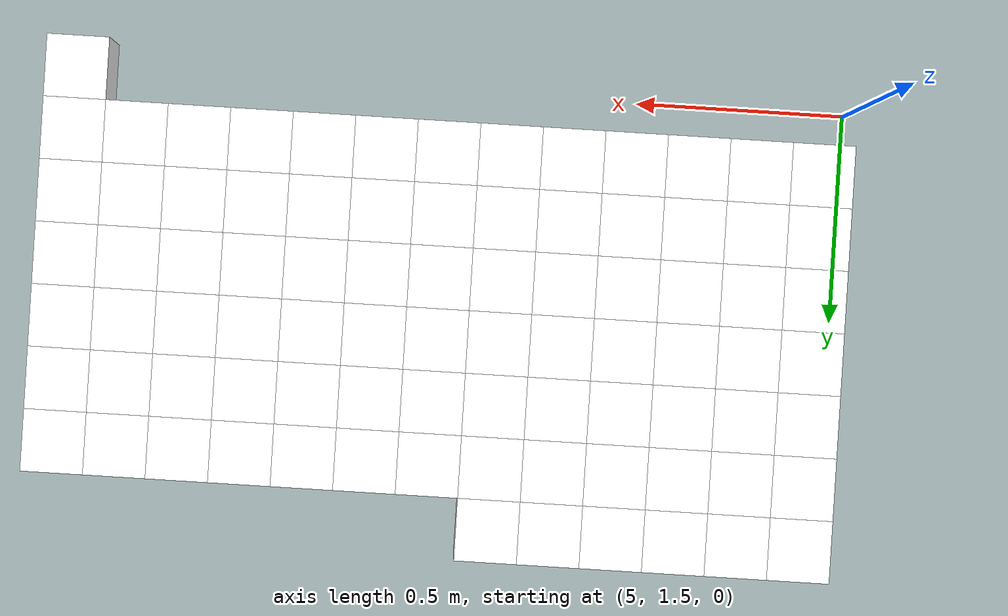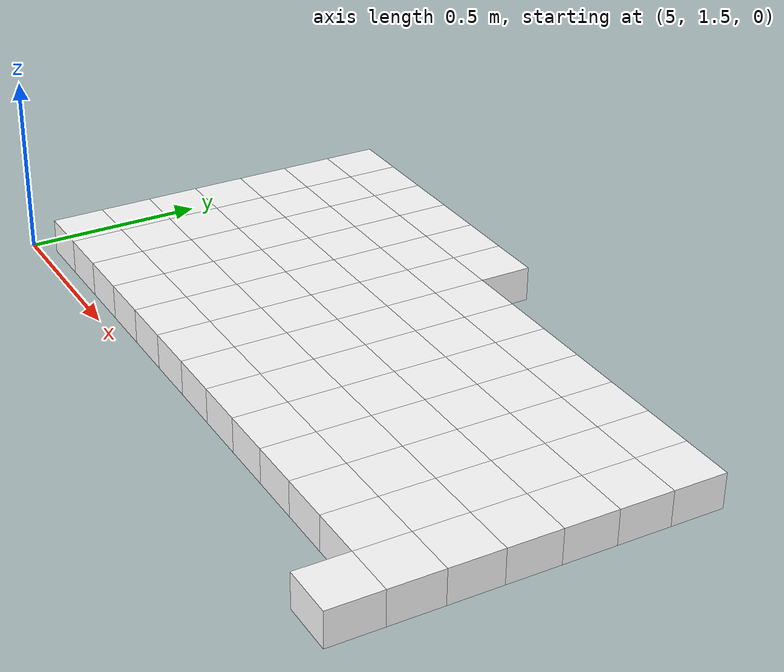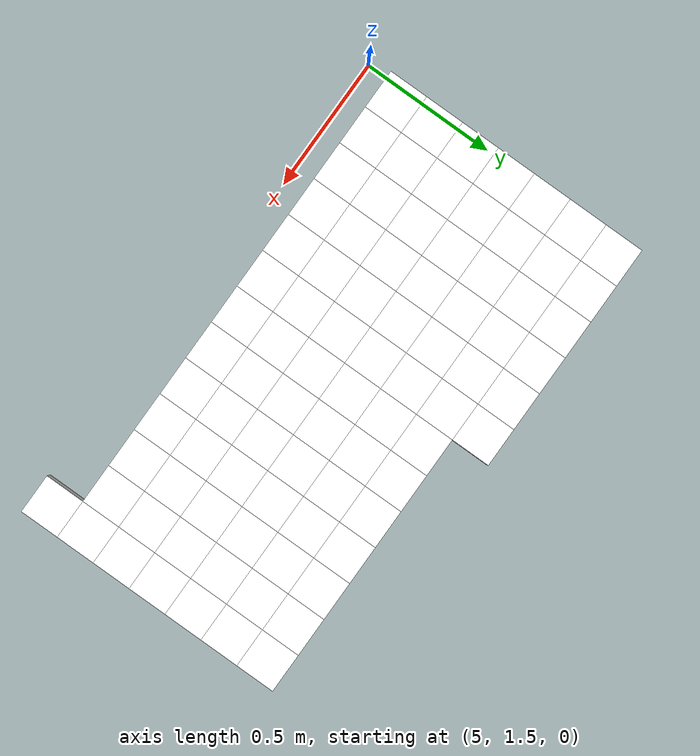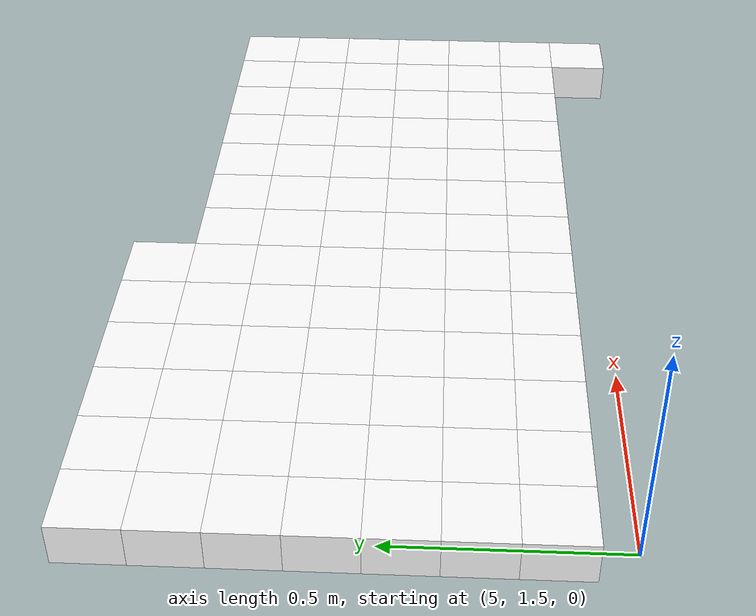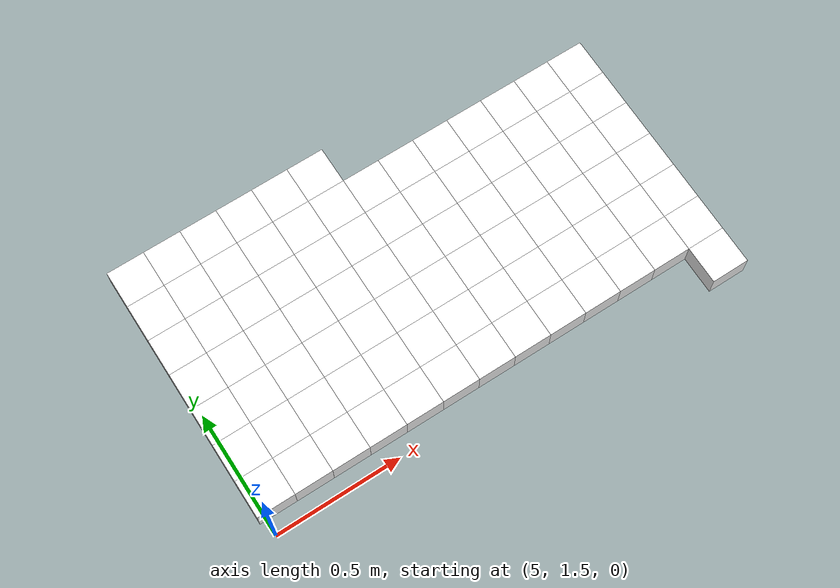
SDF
<sdf version="1.7">
 <world name="default">
  <include><uri>model://sun</uri></include>
  <model name="static_environment">
   <static>true</static>
   <link name="region_599">
    <pose>6.850000000000007 1.5 0.0 0.0 0.0 0.0</pose>
    <collision name="region_599_collision">
     <geometry><box><size>0.15 0.15 0.1</size></box></geometry>
     <surface><friction><ode><mu>1.0</mu><mu2>1.0</mu2></ode></friction></surface>
    </collision>
    <visual name="region_599_visual">
     <geometry><box><size>0.15 0.15 0.1</size></box></geometry>
     <material><ambient>1.0 1.0 1.0 1.0</ambient><diffuse>1.0 1.0 1.0 1.0</diffuse></material>
    </visual>
   </link>
   <link name="region_607">
    <pose>5.0500000000000025 1.65 0.0 0.0 0.0 0.0</pose>
    <collision name="region_607_collision">
     <geometry><box><size>0.15 0.15 0.1</size></box></geometry>
     <surface><friction><ode><mu>1.0</mu><mu2>1.0</mu2></ode></friction></surface>
    </collision>
    <visual name="region_607_visual">
     <geometry><box><size>0.15 0.15 0.1</size></box></geometry>
     <material><ambient>1.0 1.0 1.0 1.0</ambient><diffuse>1.0 1.0 1.0 1.0</diffuse></material>
    </visual>
   </link>
   <link name="region_608">
    <pose>5.200000000000003 1.65 0.0 0.0 0.0 0.0</pose>
    <collision name="region_608_collision">
     <geometry><box><size>0.15 0.15 0.1</size></box></geometry>
     <surface><friction><ode><mu>1.0</mu><mu2>1.0</mu2></ode></friction></surface>
    </collision>
    <visual name="region_608_visual">
     <geometry><box><size>0.15 0.15 0.1</size></box></geometry>
     <material><ambient>1.0 1.0 1.0 1.0</ambient><diffuse>1.0 1.0 1.0 1.0</diffuse></material>
    </visual>
   </link>
   <link name="region_609">
    <pose>5.350000000000003 1.65 0.0 0.0 0.0 0.0</pose>
    <collision name="region_609_collision">
     <geometry><box><size>0.15 0.15 0.1</size></box></geometry>
     <surface><friction><ode><mu>1.0</mu><mu2>1.0</mu2></ode></friction></surface>
    </collision>
    <visual name="region_609_visual">
     <geometry><box><size>0.15 0.15 0.1</size></box></geometry>
     <material><ambient>1.0 1.0 1.0 1.0</ambient><diffuse>1.0 1.0 1.0 1.0</diffuse></material>
    </visual>
   </link>
   <link name="region_610">
    <pose>5.5000000000000036 1.65 0.0 0.0 0.0 0.0</pose>
    <collision name="region_610_collision">
     <geometry><box><size>0.15 0.15 0.1</size></box></geometry>
     <surface><friction><ode><mu>1.0</mu><mu2>1.0</mu2></ode></friction></surface>
    </collision>
    <visual name="region_610_visual">
     <geometry><box><size>0.15 0.15 0.1</size></box></geometry>
     <material><ambient>1.0 1.0 1.0 1.0</ambient><diffuse>1.0 1.0 1.0 1.0</diffuse></material>
    </visual>
   </link>
   <link name="region_611">
    <pose>5.650000000000004 1.65 0.0 0.0 0.0 0.0</pose>
    <collision name="region_611_collision">
     <geometry><box><size>0.15 0.15 0.1</size></box></geometry>
     <surface><friction><ode><mu>1.0</mu><mu2>1.0</mu2></ode></friction></surface>
    </collision>
    <visual name="region_611_visual">
     <geometry><box><size>0.15 0.15 0.1</size></box></geometry>
     <material><ambient>1.0 1.0 1.0 1.0</ambient><diffuse>1.0 1.0 1.0 1.0</diffuse></material>
    </visual>
   </link>
   <link name="region_612">
    <pose>5.800000000000004 1.65 0.0 0.0 0.0 0.0</pose>
    <collision name="region_612_collision">
     <geometry><box><size>0.15 0.15 0.1</size></box></geometry>
     <surface><friction><ode><mu>1.0</mu><mu2>1.0</mu2></ode></friction></surface>
    </collision>
    <visual name="region_612_visual">
     <geometry><box><size>0.15 0.15 0.1</size></box></geometry>
     <material><ambient>1.0 1.0 1.0 1.0</ambient><diffuse>1.0 1.0 1.0 1.0</diffuse></material>
    </visual>
   </link>
   <link name="region_613">
    <pose>5.950000000000005 1.65 0.0 0.0 0.0 0.0</pose>
    <collision name="region_613_collision">
     <geometry><box><size>0.15 0.15 0.1</size></box></geometry>
     <surface><friction><ode><mu>1.0</mu><mu2>1.0</mu2></ode></friction></surface>
    </collision>
    <visual name="region_613_visual">
     <geometry><box><size>0.15 0.15 0.1</size></box></geometry>
     <material><ambient>1.0 1.0 1.0 1.0</ambient><diffuse>1.0 1.0 1.0 1.0</diffuse></material>
    </visual>
   </link>
   <link name="region_614">
    <pose>6.100000000000005 1.65 0.0 0.0 0.0 0.0</pose>
    <collision name="region_614_collision">
     <geometry><box><size>0.15 0.15 0.1</size></box></geometry>
     <surface><friction><ode><mu>1.0</mu><mu2>1.0</mu2></ode></friction></surface>
    </collision>
    <visual name="region_614_visual">
     <geometry><box><size>0.15 0.15 0.1</size></box></geometry>
     <material><ambient>1.0 1.0 1.0 1.0</ambient><diffuse>1.0 1.0 1.0 1.0</diffuse></material>
    </visual>
   </link>
   <link name="region_615">
    <pose>6.250000000000005 1.65 0.0 0.0 0.0 0.0</pose>
    <collision name="region_615_collision">
     <geometry><box><size>0.15 0.15 0.1</size></box></geometry>
     <surface><friction><ode><mu>1.0</mu><mu2>1.0</mu2></ode></friction></surface>
    </collision>
    <visual name="region_615_visual">
     <geometry><box><size>0.15 0.15 0.1</size></box></geometry>
     <material><ambient>1.0 1.0 1.0 1.0</ambient><diffuse>1.0 1.0 1.0 1.0</diffuse></material>
    </visual>
   </link>
   <link name="region_616">
    <pose>6.400000000000006 1.65 0.0 0.0 0.0 0.0</pose>
    <collision name="region_616_collision">
     <geometry><box><size>0.15 0.15 0.1</size></box></geometry>
     <surface><friction><ode><mu>1.0</mu><mu2>1.0</mu2></ode></friction></surface>
    </collision>
    <visual name="region_616_visual">
     <geometry><box><size>0.15 0.15 0.1</size></box></geometry>
     <material><ambient>1.0 1.0 1.0 1.0</ambient><diffuse>1.0 1.0 1.0 1.0</diffuse></material>
    </visual>
   </link>
   <link name="region_617">
    <pose>6.550000000000006 1.65 0.0 0.0 0.0 0.0</pose>
    <collision name="region_617_collision">
     <geometry><box><size>0.15 0.15 0.1</size></box></geometry>
     <surface><friction><ode><mu>1.0</mu><mu2>1.0</mu2></ode></friction></surface>
    </collision>
    <visual name="region_617_visual">
     <geometry><box><size>0.15 0.15 0.1</size></box></geometry>
     <material><ambient>1.0 1.0 1.0 1.0</ambient><diffuse>1.0 1.0 1.0 1.0</diffuse></material>
    </visual>
   </link>
   <link name="region_618">
    <pose>6.700000000000006 1.65 0.0 0.0 0.0 0.0</pose>
    <collision name="region_618_collision">
     <geometry><box><size>0.15 0.15 0.1</size></box></geometry>
     <surface><friction><ode><mu>1.0</mu><mu2>1.0</mu2></ode></friction></surface>
    </collision>
    <visual name="region_618_visual">
     <geometry><box><size>0.15 0.15 0.1</size></box></geometry>
     <material><ambient>1.0 1.0 1.0 1.0</ambient><diffuse>1.0 1.0 1.0 1.0</diffuse></material>
    </visual>
   </link>
   <link name="region_619">
    <pose>6.850000000000007 1.65 0.0 0.0 0.0 0.0</pose>
    <collision name="region_619_collision">
     <geometry><box><size>0.15 0.15 0.1</size></box></geometry>
     <surface><friction><ode><mu>1.0</mu><mu2>1.0</mu2></ode></friction></surface>
    </collision>
    <visual name="region_619_visual">
     <geometry><box><size>0.15 0.15 0.1</size></box></geometry>
     <material><ambient>1.0 1.0 1.0 1.0</ambient><diffuse>1.0 1.0 1.0 1.0</diffuse></material>
    </visual>
   </link>
   <link name="region_627">
    <pose>5.0500000000000025 1.7999999999999998 0.0 0.0 0.0 0.0</pose>
    <collision name="region_627_collision">
     <geometry><box><size>0.15 0.15 0.1</size></box></geometry>
     <surface><friction><ode><mu>1.0</mu><mu2>1.0</mu2></ode></friction></surface>
    </collision>
    <visual name="region_627_visual">
     <geometry><box><size>0.15 0.15 0.1</size></box></geometry>
     <material><ambient>1.0 1.0 1.0 1.0</ambient><diffuse>1.0 1.0 1.0 1.0</diffuse></material>
    </visual>
   </link>
   <link name="region_628">
    <pose>5.200000000000003 1.7999999999999998 0.0 0.0 0.0 0.0</pose>
    <collision name="region_628_collision">
     <geometry><box><size>0.15 0.15 0.1</size></box></geometry>
     <surface><friction><ode><mu>1.0</mu><mu2>1.0</mu2></ode></friction></surface>
    </collision>
    <visual name="region_628_visual">
     <geometry><box><size>0.15 0.15 0.1</size></box></geometry>
     <material><ambient>1.0 1.0 1.0 1.0</ambient><diffuse>1.0 1.0 1.0 1.0</diffuse></material>
    </visual>
   </link>
   <link name="region_629">
    <pose>5.350000000000003 1.7999999999999998 0.0 0.0 0.0 0.0</pose>
    <collision name="region_629_collision">
     <geometry><box><size>0.15 0.15 0.1</size></box></geometry>
     <surface><friction><ode><mu>1.0</mu><mu2>1.0</mu2></ode></friction></surface>
    </collision>
    <visual name="region_629_visual">
     <geometry><box><size>0.15 0.15 0.1</size></box></geometry>
     <material><ambient>1.0 1.0 1.0 1.0</ambient><diffuse>1.0 1.0 1.0 1.0</diffuse></material>
    </visual>
   </link>
   <link name="region_630">
    <pose>5.5000000000000036 1.7999999999999998 0.0 0.0 0.0 0.0</pose>
    <collision name="region_630_collision">
     <geometry><box><size>0.15 0.15 0.1</size></box></geometry>
     <surface><friction><ode><mu>1.0</mu><mu2>1.0</mu2></ode></friction></surface>
    </collision>
    <visual name="region_630_visual">
     <geometry><box><size>0.15 0.15 0.1</size></box></geometry>
     <material><ambient>1.0 1.0 1.0 1.0</ambient><diffuse>1.0 1.0 1.0 1.0</diffuse></material>
    </visual>
   </link>
   <link name="region_631">
    <pose>5.650000000000004 1.7999999999999998 0.0 0.0 0.0 0.0</pose>
    <collision name="region_631_collision">
     <geometry><box><size>0.15 0.15 0.1</size></box></geometry>
     <surface><friction><ode><mu>1.0</mu><mu2>1.0</mu2></ode></friction></surface>
    </collision>
    <visual name="region_631_visual">
     <geometry><box><size>0.15 0.15 0.1</size></box></geometry>
     <material><ambient>1.0 1.0 1.0 1.0</ambient><diffuse>1.0 1.0 1.0 1.0</diffuse></material>
    </visual>
   </link>
   <link name="region_632">
    <pose>5.800000000000004 1.7999999999999998 0.0 0.0 0.0 0.0</pose>
    <collision name="region_632_collision">
     <geometry><box><size>0.15 0.15 0.1</size></box></geometry>
     <surface><friction><ode><mu>1.0</mu><mu2>1.0</mu2></ode></friction></surface>
    </collision>
    <visual name="region_632_visual">
     <geometry><box><size>0.15 0.15 0.1</size></box></geometry>
     <material><ambient>1.0 1.0 1.0 1.0</ambient><diffuse>1.0 1.0 1.0 1.0</diffuse></material>
    </visual>
   </link>
   <link name="region_633">
    <pose>5.950000000000005 1.7999999999999998 0.0 0.0 0.0 0.0</pose>
    <collision name="region_633_collision">
     <geometry><box><size>0.15 0.15 0.1</size></box></geometry>
     <surface><friction><ode><mu>1.0</mu><mu2>1.0</mu2></ode></friction></surface>
    </collision>
    <visual name="region_633_visual">
     <geometry><box><size>0.15 0.15 0.1</size></box></geometry>
     <material><ambient>1.0 1.0 1.0 1.0</ambient><diffuse>1.0 1.0 1.0 1.0</diffuse></material>
    </visual>
   </link>
   <link name="region_634">
    <pose>6.100000000000005 1.7999999999999998 0.0 0.0 0.0 0.0</pose>
    <collision name="region_634_collision">
     <geometry><box><size>0.15 0.15 0.1</size></box></geometry>
     <surface><friction><ode><mu>1.0</mu><mu2>1.0</mu2></ode></friction></surface>
    </collision>
    <visual name="region_634_visual">
     <geometry><box><size>0.15 0.15 0.1</size></box></geometry>
     <material><ambient>1.0 1.0 1.0 1.0</ambient><diffuse>1.0 1.0 1.0 1.0</diffuse></material>
    </visual>
   </link>
   <link name="region_635">
    <pose>6.250000000000005 1.7999999999999998 0.0 0.0 0.0 0.0</pose>
    <collision name="region_635_collision">
     <geometry><box><size>0.15 0.15 0.1</size></box></geometry>
     <surface><friction><ode><mu>1.0</mu><mu2>1.0</mu2></ode></friction></surface>
    </collision>
    <visual name="region_635_visual">
     <geometry><box><size>0.15 0.15 0.1</size></box></geometry>
     <material><ambient>1.0 1.0 1.0 1.0</ambient><diffuse>1.0 1.0 1.0 1.0</diffuse></material>
    </visual>
   </link>
   <link name="region_636">
    <pose>6.400000000000006 1.7999999999999998 0.0 0.0 0.0 0.0</pose>
    <collision name="region_636_collision">
     <geometry><box><size>0.15 0.15 0.1</size></box></geometry>
     <surface><friction><ode><mu>1.0</mu><mu2>1.0</mu2></ode></friction></surface>
    </collision>
    <visual name="region_636_visual">
     <geometry><box><size>0.15 0.15 0.1</size></box></geometry>
     <material><ambient>1.0 1.0 1.0 1.0</ambient><diffuse>1.0 1.0 1.0 1.0</diffuse></material>
    </visual>
   </link>
   <link name="region_637">
    <pose>6.550000000000006 1.7999999999999998 0.0 0.0 0.0 0.0</pose>
    <collision name="region_637_collision">
     <geometry><box><size>0.15 0.15 0.1</size></box></geometry>
     <surface><friction><ode><mu>1.0</mu><mu2>1.0</mu2></ode></friction></surface>
    </collision>
    <visual name="region_637_visual">
     <geometry><box><size>0.15 0.15 0.1</size></box></geometry>
     <material><ambient>1.0 1.0 1.0 1.0</ambient><diffuse>1.0 1.0 1.0 1.0</diffuse></material>
    </visual>
   </link>
   <link name="region_638">
    <pose>6.700000000000006 1.7999999999999998 0.0 0.0 0.0 0.0</pose>
    <collision name="region_638_collision">
     <geometry><box><size>0.15 0.15 0.1</size></box></geometry>
     <surface><friction><ode><mu>1.0</mu><mu2>1.0</mu2></ode></friction></surface>
    </collision>
    <visual name="region_638_visual">
     <geometry><box><size>0.15 0.15 0.1</size></box></geometry>
     <material><ambient>1.0 1.0 1.0 1.0</ambient><diffuse>1.0 1.0 1.0 1.0</diffuse></material>
    </visual>
   </link>
   <link name="region_639">
    <pose>6.850000000000007 1.7999999999999998 0.0 0.0 0.0 0.0</pose>
    <collision name="region_639_collision">
     <geometry><box><size>0.15 0.15 0.1</size></box></geometry>
     <surface><friction><ode><mu>1.0</mu><mu2>1.0</mu2></ode></friction></surface>
    </collision>
    <visual name="region_639_visual">
     <geometry><box><size>0.15 0.15 0.1</size></box></geometry>
     <material><ambient>1.0 1.0 1.0 1.0</ambient><diffuse>1.0 1.0 1.0 1.0</diffuse></material>
    </visual>
   </link>
   <link name="region_647">
    <pose>5.0500000000000025 1.9499999999999997 0.0 0.0 0.0 0.0</pose>
    <collision name="region_647_collision">
     <geometry><box><size>0.15 0.15 0.1</size></box></geometry>
     <surface><friction><ode><mu>1.0</mu><mu2>1.0</mu2></ode></friction></surface>
    </collision>
    <visual name="region_647_visual">
     <geometry><box><size>0.15 0.15 0.1</size></box></geometry>
     <material><ambient>1.0 1.0 1.0 1.0</ambient><diffuse>1.0 1.0 1.0 1.0</diffuse></material>
    </visual>
   </link>
   <link name="region_648">
    <pose>5.200000000000003 1.9499999999999997 0.0 0.0 0.0 0.0</pose>
    <collision name="region_648_collision">
     <geometry><box><size>0.15 0.15 0.1</size></box></geometry>
     <surface><friction><ode><mu>1.0</mu><mu2>1.0</mu2></ode></friction></surface>
    </collision>
    <visual name="region_648_visual">
     <geometry><box><size>0.15 0.15 0.1</size></box></geometry>
     <material><ambient>1.0 1.0 1.0 1.0</ambient><diffuse>1.0 1.0 1.0 1.0</diffuse></material>
    </visual>
   </link>
   <link name="region_649">
    <pose>5.350000000000003 1.9499999999999997 0.0 0.0 0.0 0.0</pose>
    <collision name="region_649_collision">
     <geometry><box><size>0.15 0.15 0.1</size></box></geometry>
     <surface><friction><ode><mu>1.0</mu><mu2>1.0</mu2></ode></friction></surface>
    </collision>
    <visual name="region_649_visual">
     <geometry><box><size>0.15 0.15 0.1</size></box></geometry>
     <material><ambient>1.0 1.0 1.0 1.0</ambient><diffuse>1.0 1.0 1.0 1.0</diffuse></material>
    </visual>
   </link>
   <link name="region_650">
    <pose>5.5000000000000036 1.9499999999999997 0.0 0.0 0.0 0.0</pose>
    <collision name="region_650_collision">
     <geometry><box><size>0.15 0.15 0.1</size></box></geometry>
     <surface><friction><ode><mu>1.0</mu><mu2>1.0</mu2></ode></friction></surface>
    </collision>
    <visual name="region_650_visual">
     <geometry><box><size>0.15 0.15 0.1</size></box></geometry>
     <material><ambient>1.0 1.0 1.0 1.0</ambient><diffuse>1.0 1.0 1.0 1.0</diffuse></material>
    </visual>
   </link>
   <link name="region_651">
    <pose>5.650000000000004 1.9499999999999997 0.0 0.0 0.0 0.0</pose>
    <collision name="region_651_collision">
     <geometry><box><size>0.15 0.15 0.1</size></box></geometry>
     <surface><friction><ode><mu>1.0</mu><mu2>1.0</mu2></ode></friction></surface>
    </collision>
    <visual name="region_651_visual">
     <geometry><box><size>0.15 0.15 0.1</size></box></geometry>
     <material><ambient>1.0 1.0 1.0 1.0</ambient><diffuse>1.0 1.0 1.0 1.0</diffuse></material>
    </visual>
   </link>
   <link name="region_652">
    <pose>5.800000000000004 1.9499999999999997 0.0 0.0 0.0 0.0</pose>
    <collision name="region_652_collision">
     <geometry><box><size>0.15 0.15 0.1</size></box></geometry>
     <surface><friction><ode><mu>1.0</mu><mu2>1.0</mu2></ode></friction></surface>
    </collision>
    <visual name="region_652_visual">
     <geometry><box><size>0.15 0.15 0.1</size></box></geometry>
     <material><ambient>1.0 1.0 1.0 1.0</ambient><diffuse>1.0 1.0 1.0 1.0</diffuse></material>
    </visual>
   </link>
   <link name="region_653">
    <pose>5.950000000000005 1.9499999999999997 0.0 0.0 0.0 0.0</pose>
    <collision name="region_653_collision">
     <geometry><box><size>0.15 0.15 0.1</size></box></geometry>
     <surface><friction><ode><mu>1.0</mu><mu2>1.0</mu2></ode></friction></surface>
    </collision>
    <visual name="region_653_visual">
     <geometry><box><size>0.15 0.15 0.1</size></box></geometry>
     <material><ambient>1.0 1.0 1.0 1.0</ambient><diffuse>1.0 1.0 1.0 1.0</diffuse></material>
    </visual>
   </link>
   <link name="region_654">
    <pose>6.100000000000005 1.9499999999999997 0.0 0.0 0.0 0.0</pose>
    <collision name="region_654_collision">
     <geometry><box><size>0.15 0.15 0.1</size></box></geometry>
     <surface><friction><ode><mu>1.0</mu><mu2>1.0</mu2></ode></friction></surface>
    </collision>
    <visual name="region_654_visual">
     <geometry><box><size>0.15 0.15 0.1</size></box></geometry>
     <material><ambient>1.0 1.0 1.0 1.0</ambient><diffuse>1.0 1.0 1.0 1.0</diffuse></material>
    </visual>
   </link>
   <link name="region_655">
    <pose>6.250000000000005 1.9499999999999997 0.0 0.0 0.0 0.0</pose>
    <collision name="region_655_collision">
     <geometry><box><size>0.15 0.15 0.1</size></box></geometry>
     <surface><friction><ode><mu>1.0</mu><mu2>1.0</mu2></ode></friction></surface>
    </collision>
    <visual name="region_655_visual">
     <geometry><box><size>0.15 0.15 0.1</size></box></geometry>
     <material><ambient>1.0 1.0 1.0 1.0</ambient><diffuse>1.0 1.0 1.0 1.0</diffuse></material>
    </visual>
   </link>
   <link name="region_656">
    <pose>6.400000000000006 1.9499999999999997 0.0 0.0 0.0 0.0</pose>
    <collision name="region_656_collision">
     <geometry><box><size>0.15 0.15 0.1</size></box></geometry>
     <surface><friction><ode><mu>1.0</mu><mu2>1.0</mu2></ode></friction></surface>
    </collision>
    <visual name="region_656_visual">
     <geometry><box><size>0.15 0.15 0.1</size></box></geometry>
     <material><ambient>1.0 1.0 1.0 1.0</ambient><diffuse>1.0 1.0 1.0 1.0</diffuse></material>
    </visual>
   </link>
   <link name="region_657">
    <pose>6.550000000000006 1.9499999999999997 0.0 0.0 0.0 0.0</pose>
    <collision name="region_657_collision">
     <geometry><box><size>0.15 0.15 0.1</size></box></geometry>
     <surface><friction><ode><mu>1.0</mu><mu2>1.0</mu2></ode></friction></surface>
    </collision>
    <visual name="region_657_visual">
     <geometry><box><size>0.15 0.15 0.1</size></box></geometry>
     <material><ambient>1.0 1.0 1.0 1.0</ambient><diffuse>1.0 1.0 1.0 1.0</diffuse></material>
    </visual>
   </link>
   <link name="region_658">
    <pose>6.700000000000006 1.9499999999999997 0.0 0.0 0.0 0.0</pose>
    <collision name="region_658_collision">
     <geometry><box><size>0.15 0.15 0.1</size></box></geometry>
     <surface><friction><ode><mu>1.0</mu><mu2>1.0</mu2></ode></friction></surface>
    </collision>
    <visual name="region_658_visual">
     <geometry><box><size>0.15 0.15 0.1</size></box></geometry>
     <material><ambient>1.0 1.0 1.0 1.0</ambient><diffuse>1.0 1.0 1.0 1.0</diffuse></material>
    </visual>
   </link>
   <link name="region_659">
    <pose>6.850000000000007 1.9499999999999997 0.0 0.0 0.0 0.0</pose>
    <collision name="region_659_collision">
     <geometry><box><size>0.15 0.15 0.1</size></box></geometry>
     <surface><friction><ode><mu>1.0</mu><mu2>1.0</mu2></ode></friction></surface>
    </collision>
    <visual name="region_659_visual">
     <geometry><box><size>0.15 0.15 0.1</size></box></geometry>
     <material><ambient>1.0 1.0 1.0 1.0</ambient><diffuse>1.0 1.0 1.0 1.0</diffuse></material>
    </visual>
   </link>
   <link name="region_667">
    <pose>5.0500000000000025 2.0999999999999996 0.0 0.0 0.0 0.0</pose>
    <collision name="region_667_collision">
     <geometry><box><size>0.15 0.15 0.1</size></box></geometry>
     <surface><friction><ode><mu>1.0</mu><mu2>1.0</mu2></ode></friction></surface>
    </collision>
    <visual name="region_667_visual">
     <geometry><box><size>0.15 0.15 0.1</size></box></geometry>
     <material><ambient>1.0 1.0 1.0 1.0</ambient><diffuse>1.0 1.0 1.0 1.0</diffuse></material>
    </visual>
   </link>
   <link name="region_668">
    <pose>5.200000000000003 2.0999999999999996 0.0 0.0 0.0 0.0</pose>
    <collision name="region_668_collision">
     <geometry><box><size>0.15 0.15 0.1</size></box></geometry>
     <surface><friction><ode><mu>1.0</mu><mu2>1.0</mu2></ode></friction></surface>
    </collision>
    <visual name="region_668_visual">
     <geometry><box><size>0.15 0.15 0.1</size></box></geometry>
     <material><ambient>1.0 1.0 1.0 1.0</ambient><diffuse>1.0 1.0 1.0 1.0</diffuse></material>
    </visual>
   </link>
   <link name="region_669">
    <pose>5.350000000000003 2.0999999999999996 0.0 0.0 0.0 0.0</pose>
    <collision name="region_669_collision">
     <geometry><box><size>0.15 0.15 0.1</size></box></geometry>
     <surface><friction><ode><mu>1.0</mu><mu2>1.0</mu2></ode></friction></surface>
    </collision>
    <visual name="region_669_visual">
     <geometry><box><size>0.15 0.15 0.1</size></box></geometry>
     <material><ambient>1.0 1.0 1.0 1.0</ambient><diffuse>1.0 1.0 1.0 1.0</diffuse></material>
    </visual>
   </link>
   <link name="region_670">
    <pose>5.5000000000000036 2.0999999999999996 0.0 0.0 0.0 0.0</pose>
    <collision name="region_670_collision">
     <geometry><box><size>0.15 0.15 0.1</size></box></geometry>
     <surface><friction><ode><mu>1.0</mu><mu2>1.0</mu2></ode></friction></surface>
    </collision>
    <visual name="region_670_visual">
     <geometry><box><size>0.15 0.15 0.1</size></box></geometry>
     <material><ambient>1.0 1.0 1.0 1.0</ambient><diffuse>1.0 1.0 1.0 1.0</diffuse></material>
    </visual>
   </link>
   <link name="region_671">
    <pose>5.650000000000004 2.0999999999999996 0.0 0.0 0.0 0.0</pose>
    <collision name="region_671_collision">
     <geometry><box><size>0.15 0.15 0.1</size></box></geometry>
     <surface><friction><ode><mu>1.0</mu><mu2>1.0</mu2></ode></friction></surface>
    </collision>
    <visual name="region_671_visual">
     <geometry><box><size>0.15 0.15 0.1</size></box></geometry>
     <material><ambient>1.0 1.0 1.0 1.0</ambient><diffuse>1.0 1.0 1.0 1.0</diffuse></material>
    </visual>
   </link>
   <link name="region_672">
    <pose>5.800000000000004 2.0999999999999996 0.0 0.0 0.0 0.0</pose>
    <collision name="region_672_collision">
     <geometry><box><size>0.15 0.15 0.1</size></box></geometry>
     <surface><friction><ode><mu>1.0</mu><mu2>1.0</mu2></ode></friction></surface>
    </collision>
    <visual name="region_672_visual">
     <geometry><box><size>0.15 0.15 0.1</size></box></geometry>
     <material><ambient>1.0 1.0 1.0 1.0</ambient><diffuse>1.0 1.0 1.0 1.0</diffuse></material>
    </visual>
   </link>
   <link name="region_673">
    <pose>5.950000000000005 2.0999999999999996 0.0 0.0 0.0 0.0</pose>
    <collision name="region_673_collision">
     <geometry><box><size>0.15 0.15 0.1</size></box></geometry>
     <surface><friction><ode><mu>1.0</mu><mu2>1.0</mu2></ode></friction></surface>
    </collision>
    <visual name="region_673_visual">
     <geometry><box><size>0.15 0.15 0.1</size></box></geometry>
     <material><ambient>1.0 1.0 1.0 1.0</ambient><diffuse>1.0 1.0 1.0 1.0</diffuse></material>
    </visual>
   </link>
   <link name="region_674">
    <pose>6.100000000000005 2.0999999999999996 0.0 0.0 0.0 0.0</pose>
    <collision name="region_674_collision">
     <geometry><box><size>0.15 0.15 0.1</size></box></geometry>
     <surface><friction><ode><mu>1.0</mu><mu2>1.0</mu2></ode></friction></surface>
    </collision>
    <visual name="region_674_visual">
     <geometry><box><size>0.15 0.15 0.1</size></box></geometry>
     <material><ambient>1.0 1.0 1.0 1.0</ambient><diffuse>1.0 1.0 1.0 1.0</diffuse></material>
    </visual>
   </link>
   <link name="region_675">
    <pose>6.250000000000005 2.0999999999999996 0.0 0.0 0.0 0.0</pose>
    <collision name="region_675_collision">
     <geometry><box><size>0.15 0.15 0.1</size></box></geometry>
     <surface><friction><ode><mu>1.0</mu><mu2>1.0</mu2></ode></friction></surface>
    </collision>
    <visual name="region_675_visual">
     <geometry><box><size>0.15 0.15 0.1</size></box></geometry>
     <material><ambient>1.0 1.0 1.0 1.0</ambient><diffuse>1.0 1.0 1.0 1.0</diffuse></material>
    </visual>
   </link>
   <link name="region_676">
    <pose>6.400000000000006 2.0999999999999996 0.0 0.0 0.0 0.0</pose>
    <collision name="region_676_collision">
     <geometry><box><size>0.15 0.15 0.1</size></box></geometry>
     <surface><friction><ode><mu>1.0</mu><mu2>1.0</mu2></ode></friction></surface>
    </collision>
    <visual name="region_676_visual">
     <geometry><box><size>0.15 0.15 0.1</size></box></geometry>
     <material><ambient>1.0 1.0 1.0 1.0</ambient><diffuse>1.0 1.0 1.0 1.0</diffuse></material>
    </visual>
   </link>
   <link name="region_677">
    <pose>6.550000000000006 2.0999999999999996 0.0 0.0 0.0 0.0</pose>
    <collision name="region_677_collision">
     <geometry><box><size>0.15 0.15 0.1</size></box></geometry>
     <surface><friction><ode><mu>1.0</mu><mu2>1.0</mu2></ode></friction></surface>
    </collision>
    <visual name="region_677_visual">
     <geometry><box><size>0.15 0.15 0.1</size></box></geometry>
     <material><ambient>1.0 1.0 1.0 1.0</ambient><diffuse>1.0 1.0 1.0 1.0</diffuse></material>
    </visual>
   </link>
   <link name="region_678">
    <pose>6.700000000000006 2.0999999999999996 0.0 0.0 0.0 0.0</pose>
    <collision name="region_678_collision">
     <geometry><box><size>0.15 0.15 0.1</size></box></geometry>
     <surface><friction><ode><mu>1.0</mu><mu2>1.0</mu2></ode></friction></surface>
    </collision>
    <visual name="region_678_visual">
     <geometry><box><size>0.15 0.15 0.1</size></box></geometry>
     <material><ambient>1.0 1.0 1.0 1.0</ambient><diffuse>1.0 1.0 1.0 1.0</diffuse></material>
    </visual>
   </link>
   <link name="region_679">
    <pose>6.850000000000007 2.0999999999999996 0.0 0.0 0.0 0.0</pose>
    <collision name="region_679_collision">
     <geometry><box><size>0.15 0.15 0.1</size></box></geometry>
     <surface><friction><ode><mu>1.0</mu><mu2>1.0</mu2></ode></friction></surface>
    </collision>
    <visual name="region_679_visual">
     <geometry><box><size>0.15 0.15 0.1</size></box></geometry>
     <material><ambient>1.0 1.0 1.0 1.0</ambient><diffuse>1.0 1.0 1.0 1.0</diffuse></material>
    </visual>
   </link>
   <link name="region_687">
    <pose>5.0500000000000025 2.2499999999999996 0.0 0.0 0.0 0.0</pose>
    <collision name="region_687_collision">
     <geometry><box><size>0.15 0.15 0.1</size></box></geometry>
     <surface><friction><ode><mu>1.0</mu><mu2>1.0</mu2></ode></friction></surface>
    </collision>
    <visual name="region_687_visual">
     <geometry><box><size>0.15 0.15 0.1</size></box></geometry>
     <material><ambient>1.0 1.0 1.0 1.0</ambient><diffuse>1.0 1.0 1.0 1.0</diffuse></material>
    </visual>
   </link>
   <link name="region_688">
    <pose>5.200000000000003 2.2499999999999996 0.0 0.0 0.0 0.0</pose>
    <collision name="region_688_collision">
     <geometry><box><size>0.15 0.15 0.1</size></box></geometry>
     <surface><friction><ode><mu>1.0</mu><mu2>1.0</mu2></ode></friction></surface>
    </collision>
    <visual name="region_688_visual">
     <geometry><box><size>0.15 0.15 0.1</size></box></geometry>
     <material><ambient>1.0 1.0 1.0 1.0</ambient><diffuse>1.0 1.0 1.0 1.0</diffuse></material>
    </visual>
   </link>
   <link name="region_689">
    <pose>5.350000000000003 2.2499999999999996 0.0 0.0 0.0 0.0</pose>
    <collision name="region_689_collision">
     <geometry><box><size>0.15 0.15 0.1</size></box></geometry>
     <surface><friction><ode><mu>1.0</mu><mu2>1.0</mu2></ode></friction></surface>
    </collision>
    <visual name="region_689_visual">
     <geometry><box><size>0.15 0.15 0.1</size></box></geometry>
     <material><ambient>1.0 1.0 1.0 1.0</ambient><diffuse>1.0 1.0 1.0 1.0</diffuse></material>
    </visual>
   </link>
   <link name="region_690">
    <pose>5.5000000000000036 2.2499999999999996 0.0 0.0 0.0 0.0</pose>
    <collision name="region_690_collision">
     <geometry><box><size>0.15 0.15 0.1</size></box></geometry>
     <surface><friction><ode><mu>1.0</mu><mu2>1.0</mu2></ode></friction></surface>
    </collision>
    <visual name="region_690_visual">
     <geometry><box><size>0.15 0.15 0.1</size></box></geometry>
     <material><ambient>1.0 1.0 1.0 1.0</ambient><diffuse>1.0 1.0 1.0 1.0</diffuse></material>
    </visual>
   </link>
   <link name="region_691">
    <pose>5.650000000000004 2.2499999999999996 0.0 0.0 0.0 0.0</pose>
    <collision name="region_691_collision">
     <geometry><box><size>0.15 0.15 0.1</size></box></geometry>
     <surface><friction><ode><mu>1.0</mu><mu2>1.0</mu2></ode></friction></surface>
    </collision>
    <visual name="region_691_visual">
     <geometry><box><size>0.15 0.15 0.1</size></box></geometry>
     <material><ambient>1.0 1.0 1.0 1.0</ambient><diffuse>1.0 1.0 1.0 1.0</diffuse></material>
    </visual>
   </link>
   <link name="region_692">
    <pose>5.800000000000004 2.2499999999999996 0.0 0.0 0.0 0.0</pose>
    <collision name="region_692_collision">
     <geometry><box><size>0.15 0.15 0.1</size></box></geometry>
     <surface><friction><ode><mu>1.0</mu><mu2>1.0</mu2></ode></friction></surface>
    </collision>
    <visual name="region_692_visual">
     <geometry><box><size>0.15 0.15 0.1</size></box></geometry>
     <material><ambient>1.0 1.0 1.0 1.0</ambient><diffuse>1.0 1.0 1.0 1.0</diffuse></material>
    </visual>
   </link>
   <link name="region_693">
    <pose>5.950000000000005 2.2499999999999996 0.0 0.0 0.0 0.0</pose>
    <collision name="region_693_collision">
     <geometry><box><size>0.15 0.15 0.1</size></box></geometry>
     <surface><friction><ode><mu>1.0</mu><mu2>1.0</mu2></ode></friction></surface>
    </collision>
    <visual name="region_693_visual">
     <geometry><box><size>0.15 0.15 0.1</size></box></geometry>
     <material><ambient>1.0 1.0 1.0 1.0</ambient><diffuse>1.0 1.0 1.0 1.0</diffuse></material>
    </visual>
   </link>
   <link name="region_694">
    <pose>6.100000000000005 2.2499999999999996 0.0 0.0 0.0 0.0</pose>
    <collision name="region_694_collision">
     <geometry><box><size>0.15 0.15 0.1</size></box></geometry>
     <surface><friction><ode><mu>1.0</mu><mu2>1.0</mu2></ode></friction></surface>
    </collision>
    <visual name="region_694_visual">
     <geometry><box><size>0.15 0.15 0.1</size></box></geometry>
     <material><ambient>1.0 1.0 1.0 1.0</ambient><diffuse>1.0 1.0 1.0 1.0</diffuse></material>
    </visual>
   </link>
   <link name="region_695">
    <pose>6.250000000000005 2.2499999999999996 0.0 0.0 0.0 0.0</pose>
    <collision name="region_695_collision">
     <geometry><box><size>0.15 0.15 0.1</size></box></geometry>
     <surface><friction><ode><mu>1.0</mu><mu2>1.0</mu2></ode></friction></surface>
    </collision>
    <visual name="region_695_visual">
     <geometry><box><size>0.15 0.15 0.1</size></box></geometry>
     <material><ambient>1.0 1.0 1.0 1.0</ambient><diffuse>1.0 1.0 1.0 1.0</diffuse></material>
    </visual>
   </link>
   <link name="region_696">
    <pose>6.400000000000006 2.2499999999999996 0.0 0.0 0.0 0.0</pose>
    <collision name="region_696_collision">
     <geometry><box><size>0.15 0.15 0.1</size></box></geometry>
     <surface><friction><ode><mu>1.0</mu><mu2>1.0</mu2></ode></friction></surface>
    </collision>
    <visual name="region_696_visual">
     <geometry><box><size>0.15 0.15 0.1</size></box></geometry>
     <material><ambient>1.0 1.0 1.0 1.0</ambient><diffuse>1.0 1.0 1.0 1.0</diffuse></material>
    </visual>
   </link>
   <link name="region_697">
    <pose>6.550000000000006 2.2499999999999996 0.0 0.0 0.0 0.0</pose>
    <collision name="region_697_collision">
     <geometry><box><size>0.15 0.15 0.1</size></box></geometry>
     <surface><friction><ode><mu>1.0</mu><mu2>1.0</mu2></ode></friction></surface>
    </collision>
    <visual name="region_697_visual">
     <geometry><box><size>0.15 0.15 0.1</size></box></geometry>
     <material><ambient>1.0 1.0 1.0 1.0</ambient><diffuse>1.0 1.0 1.0 1.0</diffuse></material>
    </visual>
   </link>
   <link name="region_698">
    <pose>6.700000000000006 2.2499999999999996 0.0 0.0 0.0 0.0</pose>
    <collision name="region_698_collision">
     <geometry><box><size>0.15 0.15 0.1</size></box></geometry>
     <surface><friction><ode><mu>1.0</mu><mu2>1.0</mu2></ode></friction></surface>
    </collision>
    <visual name="region_698_visual">
     <geometry><box><size>0.15 0.15 0.1</size></box></geometry>
     <material><ambient>1.0 1.0 1.0 1.0</ambient><diffuse>1.0 1.0 1.0 1.0</diffuse></material>
    </visual>
   </link>
   <link name="region_699">
    <pose>6.850000000000007 2.2499999999999996 0.0 0.0 0.0 0.0</pose>
    <collision name="region_699_collision">
     <geometry><box><size>0.15 0.15 0.1</size></box></geometry>
     <surface><friction><ode><mu>1.0</mu><mu2>1.0</mu2></ode></friction></surface>
    </collision>
    <visual name="region_699_visual">
     <geometry><box><size>0.15 0.15 0.1</size></box></geometry>
     <material><ambient>1.0 1.0 1.0 1.0</ambient><diffuse>1.0 1.0 1.0 1.0</diffuse></material>
    </visual>
   </link>
   <link name="region_707">
    <pose>5.0500000000000025 2.3999999999999995 0.0 0.0 0.0 0.0</pose>
    <collision name="region_707_collision">
     <geometry><box><size>0.15 0.15 0.1</size></box></geometry>
     <surface><friction><ode><mu>1.0</mu><mu2>1.0</mu2></ode></friction></surface>
    </collision>
    <visual name="region_707_visual">
     <geometry><box><size>0.15 0.15 0.1</size></box></geometry>
     <material><ambient>1.0 1.0 1.0 1.0</ambient><diffuse>1.0 1.0 1.0 1.0</diffuse></material>
    </visual>
   </link>
   <link name="region_708">
    <pose>5.200000000000003 2.3999999999999995 0.0 0.0 0.0 0.0</pose>
    <collision name="region_708_collision">
     <geometry><box><size>0.15 0.15 0.1</size></box></geometry>
     <surface><friction><ode><mu>1.0</mu><mu2>1.0</mu2></ode></friction></surface>
    </collision>
    <visual name="region_708_visual">
     <geometry><box><size>0.15 0.15 0.1</size></box></geometry>
     <material><ambient>1.0 1.0 1.0 1.0</ambient><diffuse>1.0 1.0 1.0 1.0</diffuse></material>
    </visual>
   </link>
   <link name="region_709">
    <pose>5.350000000000003 2.3999999999999995 0.0 0.0 0.0 0.0</pose>
    <collision name="region_709_collision">
     <geometry><box><size>0.15 0.15 0.1</size></box></geometry>
     <surface><friction><ode><mu>1.0</mu><mu2>1.0</mu2></ode></friction></surface>
    </collision>
    <visual name="region_709_visual">
     <geometry><box><size>0.15 0.15 0.1</size></box></geometry>
     <material><ambient>1.0 1.0 1.0 1.0</ambient><diffuse>1.0 1.0 1.0 1.0</diffuse></material>
    </visual>
   </link>
   <link name="region_710">
    <pose>5.5000000000000036 2.3999999999999995 0.0 0.0 0.0 0.0</pose>
    <collision name="region_710_collision">
     <geometry><box><size>0.15 0.15 0.1</size></box></geometry>
     <surface><friction><ode><mu>1.0</mu><mu2>1.0</mu2></ode></friction></surface>
    </collision>
    <visual name="region_710_visual">
     <geometry><box><size>0.15 0.15 0.1</size></box></geometry>
     <material><ambient>1.0 1.0 1.0 1.0</ambient><diffuse>1.0 1.0 1.0 1.0</diffuse></material>
    </visual>
   </link>
   <link name="region_711">
    <pose>5.650000000000004 2.3999999999999995 0.0 0.0 0.0 0.0</pose>
    <collision name="region_711_collision">
     <geometry><box><size>0.15 0.15 0.1</size></box></geometry>
     <surface><friction><ode><mu>1.0</mu><mu2>1.0</mu2></ode></friction></surface>
    </collision>
    <visual name="region_711_visual">
     <geometry><box><size>0.15 0.15 0.1</size></box></geometry>
     <material><ambient>1.0 1.0 1.0 1.0</ambient><diffuse>1.0 1.0 1.0 1.0</diffuse></material>
    </visual>
   </link>
   <link name="region_712">
    <pose>5.800000000000004 2.3999999999999995 0.0 0.0 0.0 0.0</pose>
    <collision name="region_712_collision">
     <geometry><box><size>0.15 0.15 0.1</size></box></geometry>
     <surface><friction><ode><mu>1.0</mu><mu2>1.0</mu2></ode></friction></surface>
    </collision>
    <visual name="region_712_visual">
     <geometry><box><size>0.15 0.15 0.1</size></box></geometry>
     <material><ambient>1.0 1.0 1.0 1.0</ambient><diffuse>1.0 1.0 1.0 1.0</diffuse></material>
    </visual>
   </link>
   <link name="region_713">
    <pose>5.950000000000005 2.3999999999999995 0.0 0.0 0.0 0.0</pose>
    <collision name="region_713_collision">
     <geometry><box><size>0.15 0.15 0.1</size></box></geometry>
     <surface><friction><ode><mu>1.0</mu><mu2>1.0</mu2></ode></friction></surface>
    </collision>
    <visual name="region_713_visual">
     <geometry><box><size>0.15 0.15 0.1</size></box></geometry>
     <material><ambient>1.0 1.0 1.0 1.0</ambient><diffuse>1.0 1.0 1.0 1.0</diffuse></material>
    </visual>
   </link>
   <link name="region_714">
    <pose>6.100000000000005 2.3999999999999995 0.0 0.0 0.0 0.0</pose>
    <collision name="region_714_collision">
     <geometry><box><size>0.15 0.15 0.1</size></box></geometry>
     <surface><friction><ode><mu>1.0</mu><mu2>1.0</mu2></ode></friction></surface>
    </collision>
    <visual name="region_714_visual">
     <geometry><box><size>0.15 0.15 0.1</size></box></geometry>
     <material><ambient>1.0 1.0 1.0 1.0</ambient><diffuse>1.0 1.0 1.0 1.0</diffuse></material>
    </visual>
   </link>
   <link name="region_715">
    <pose>6.250000000000005 2.3999999999999995 0.0 0.0 0.0 0.0</pose>
    <collision name="region_715_collision">
     <geometry><box><size>0.15 0.15 0.1</size></box></geometry>
     <surface><friction><ode><mu>1.0</mu><mu2>1.0</mu2></ode></friction></surface>
    </collision>
    <visual name="region_715_visual">
     <geometry><box><size>0.15 0.15 0.1</size></box></geometry>
     <material><ambient>1.0 1.0 1.0 1.0</ambient><diffuse>1.0 1.0 1.0 1.0</diffuse></material>
    </visual>
   </link>
   <link name="region_716">
    <pose>6.400000000000006 2.3999999999999995 0.0 0.0 0.0 0.0</pose>
    <collision name="region_716_collision">
     <geometry><box><size>0.15 0.15 0.1</size></box></geometry>
     <surface><friction><ode><mu>1.0</mu><mu2>1.0</mu2></ode></friction></surface>
    </collision>
    <visual name="region_716_visual">
     <geometry><box><size>0.15 0.15 0.1</size></box></geometry>
     <material><ambient>1.0 1.0 1.0 1.0</ambient><diffuse>1.0 1.0 1.0 1.0</diffuse></material>
    </visual>
   </link>
   <link name="region_717">
    <pose>6.550000000000006 2.3999999999999995 0.0 0.0 0.0 0.0</pose>
    <collision name="region_717_collision">
     <geometry><box><size>0.15 0.15 0.1</size></box></geometry>
     <surface><friction><ode><mu>1.0</mu><mu2>1.0</mu2></ode></friction></surface>
    </collision>
    <visual name="region_717_visual">
     <geometry><box><size>0.15 0.15 0.1</size></box></geometry>
     <material><ambient>1.0 1.0 1.0 1.0</ambient><diffuse>1.0 1.0 1.0 1.0</diffuse></material>
    </visual>
   </link>
   <link name="region_718">
    <pose>6.700000000000006 2.3999999999999995 0.0 0.0 0.0 0.0</pose>
    <collision name="region_718_collision">
     <geometry><box><size>0.15 0.15 0.1</size></box></geometry>
     <surface><friction><ode><mu>1.0</mu><mu2>1.0</mu2></ode></friction></surface>
    </collision>
    <visual name="region_718_visual">
     <geometry><box><size>0.15 0.15 0.1</size></box></geometry>
     <material><ambient>1.0 1.0 1.0 1.0</ambient><diffuse>1.0 1.0 1.0 1.0</diffuse></material>
    </visual>
   </link>
   <link name="region_719">
    <pose>6.850000000000007 2.3999999999999995 0.0 0.0 0.0 0.0</pose>
    <collision name="region_719_collision">
     <geometry><box><size>0.15 0.15 0.1</size></box></geometry>
     <surface><friction><ode><mu>1.0</mu><mu2>1.0</mu2></ode></friction></surface>
    </collision>
    <visual name="region_719_visual">
     <geometry><box><size>0.15 0.15 0.1</size></box></geometry>
     <material><ambient>1.0 1.0 1.0 1.0</ambient><diffuse>1.0 1.0 1.0 1.0</diffuse></material>
    </visual>
   </link>
   <link name="region_727">
    <pose>5.0500000000000025 2.5499999999999994 0.0 0.0 0.0 0.0</pose>
    <collision name="region_727_collision">
     <geometry><box><size>0.15 0.15 0.1</size></box></geometry>
     <surface><friction><ode><mu>1.0</mu><mu2>1.0</mu2></ode></friction></surface>
    </collision>
    <visual name="region_727_visual">
     <geometry><box><size>0.15 0.15 0.1</size></box></geometry>
     <material><ambient>1.0 1.0 1.0 1.0</ambient><diffuse>1.0 1.0 1.0 1.0</diffuse></material>
    </visual>
   </link>
   <link name="region_728">
    <pose>5.200000000000003 2.5499999999999994 0.0 0.0 0.0 0.0</pose>
    <collision name="region_728_collision">
     <geometry><box><size>0.15 0.15 0.1</size></box></geometry>
     <surface><friction><ode><mu>1.0</mu><mu2>1.0</mu2></ode></friction></surface>
    </collision>
    <visual name="region_728_visual">
     <geometry><box><size>0.15 0.15 0.1</size></box></geometry>
     <material><ambient>1.0 1.0 1.0 1.0</ambient><diffuse>1.0 1.0 1.0 1.0</diffuse></material>
    </visual>
   </link>
   <link name="region_729">
    <pose>5.350000000000003 2.5499999999999994 0.0 0.0 0.0 0.0</pose>
    <collision name="region_729_collision">
     <geometry><box><size>0.15 0.15 0.1</size></box></geometry>
     <surface><friction><ode><mu>1.0</mu><mu2>1.0</mu2></ode></friction></surface>
    </collision>
    <visual name="region_729_visual">
     <geometry><box><size>0.15 0.15 0.1</size></box></geometry>
     <material><ambient>1.0 1.0 1.0 1.0</ambient><diffuse>1.0 1.0 1.0 1.0</diffuse></material>
    </visual>
   </link>
   <link name="region_730">
    <pose>5.5000000000000036 2.5499999999999994 0.0 0.0 0.0 0.0</pose>
    <collision name="region_730_collision">
     <geometry><box><size>0.15 0.15 0.1</size></box></geometry>
     <surface><friction><ode><mu>1.0</mu><mu2>1.0</mu2></ode></friction></surface>
    </collision>
    <visual name="region_730_visual">
     <geometry><box><size>0.15 0.15 0.1</size></box></geometry>
     <material><ambient>1.0 1.0 1.0 1.0</ambient><diffuse>1.0 1.0 1.0 1.0</diffuse></material>
    </visual>
   </link>
   <link name="region_731">
    <pose>5.650000000000004 2.5499999999999994 0.0 0.0 0.0 0.0</pose>
    <collision name="region_731_collision">
     <geometry><box><size>0.15 0.15 0.1</size></box></geometry>
     <surface><friction><ode><mu>1.0</mu><mu2>1.0</mu2></ode></friction></surface>
    </collision>
    <visual name="region_731_visual">
     <geometry><box><size>0.15 0.15 0.1</size></box></geometry>
     <material><ambient>1.0 1.0 1.0 1.0</ambient><diffuse>1.0 1.0 1.0 1.0</diffuse></material>
    </visual>
   </link>
   <link name="region_732">
    <pose>5.800000000000004 2.5499999999999994 0.0 0.0 0.0 0.0</pose>
    <collision name="region_732_collision">
     <geometry><box><size>0.15 0.15 0.1</size></box></geometry>
     <surface><friction><ode><mu>1.0</mu><mu2>1.0</mu2></ode></friction></surface>
    </collision>
    <visual name="region_732_visual">
     <geometry><box><size>0.15 0.15 0.1</size></box></geometry>
     <material><ambient>1.0 1.0 1.0 1.0</ambient><diffuse>1.0 1.0 1.0 1.0</diffuse></material>
    </visual>
   </link>
  </model>
 </world>
</sdf>
